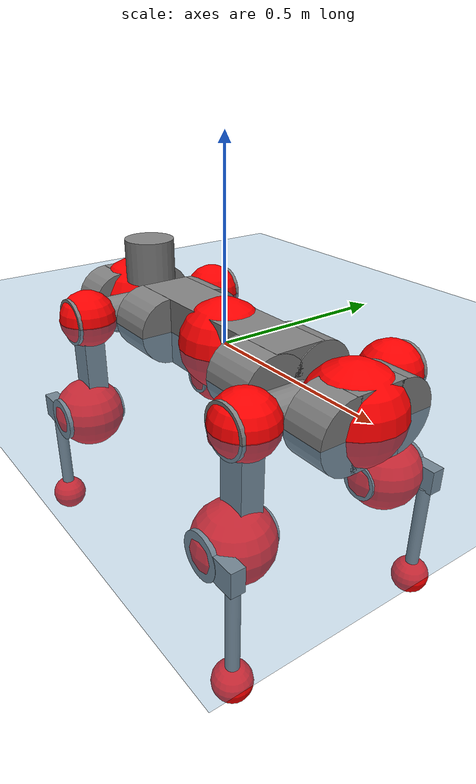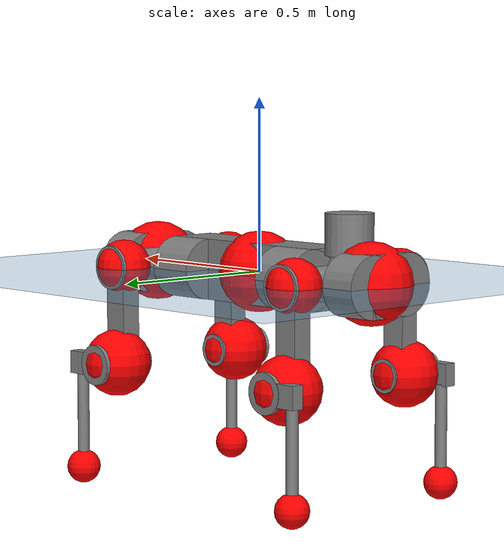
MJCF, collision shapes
<mujoco model="anymal_c">
  <compiler angle="radian" assetdir="assets" balanceinertia="true" inertiafromgeom="false"/>

  <option timestep="0.005" density="1.2" viscosity="2e-05"/>

  <size nkey="1"/>

  <visual>
    <quality shadowsize="8192"/>
    <map shadowclip="0.5"/>
  </visual>

  <default>
    <default class="/">
      <material specular="0" shininess="0.25"/>
      <geom contype="0" conaffinity="0" group="1" solref="-1000 -80"/>
      <site size="0.01 0.005 0.005" group="5"/>
      <general forcelimited="true" forcerange="-80 80" biastype="affine" gainprm="80" biasprm="0 -80 -2"/>
      <default class="anymal_c">
        <joint armature="0.01" damping="0.01" frictionloss="0.1"/>
        <default class="visual">
          <geom type="mesh" group="2"/>
          <default class="visual_zflip"/>
        </default>
        <default class="collision">
          <geom type="cylinder" group="3"/>
          <default class="foot">
            <geom size="0.03 0 0" type="sphere" condim="6" priority="1" friction="0.8 0.02 0.01" solimp="0.015 1 0.03"/>
          </default>
        </default>
      </default>
      <default class="reward_collision_sphere">
        <geom group="5" rgba="1 0 0 1"/>
      </default>
    </default>
  </default>

  <asset>
    <texture type="skybox" colorspace="auto" name="//unnamed_texture_0" builtin="gradient" rgb1="0.95 0.95 0.95" rgb2="0.95 0.95 0.95" width="100" height="600"/>
    <texture type="2d" colorspace="auto" name="texplane" builtin="checker" rgb1="0.345 0.575 0.748" rgb2="0.345 0.575 0.748" markrgb="1 1 1" width="512" height="512"/>
    <texture type="2d" colorspace="linear" name="base" file="base.png"/>
    <texture type="2d" colorspace="linear" name="top_shell" file="top_shell.png"/>
    <texture type="2d" colorspace="linear" name="bottom_shell" file="bottom_shell.png"/>
    <texture type="2d" colorspace="linear" name="remote" file="remote.png"/>
    <texture type="2d" colorspace="linear" name="hatch" file="hatch.png"/>
    <texture type="2d" colorspace="linear" name="handle" file="handle.png"/>
    <texture type="2d" colorspace="linear" name="face" file="face.png"/>
    <texture type="2d" colorspace="linear" name="battery" file="battery.png"/>
    <texture type="2d" colorspace="linear" name="lidar_cage" file="lidar_cage.png"/>
    <texture type="2d" colorspace="linear" name="depth_camera" file="depth_camera.png"/>
    <texture type="2d" colorspace="linear" name="wide_angle_camera" file="wide_angle_camera.png"/>
    <texture type="2d" colorspace="linear" name="lidar" file="lidar.png"/>
    <texture type="2d" colorspace="linear" name="drive" file="drive.png"/>
    <texture type="2d" colorspace="linear" name="hip_l" file="hip_l.png"/>
    <texture type="2d" colorspace="linear" name="shank_l" file="shank_l.png"/>
    <texture type="2d" colorspace="linear" name="foot" file="foot.png"/>
    <texture type="2d" colorspace="linear" name="thigh" file="thigh.png"/>
    <texture type="2d" colorspace="linear" name="shank_r" file="shank_r.png"/>
    <texture type="2d" colorspace="linear" name="hip_r" file="hip_r.png"/>
    <material name="MatPlane" class="/" texture="texplane" texuniform="true" texrepeat="2 2" specular="0.9" shininess="0.5"/>
    <material name="black_plastic" class="/" rgba="0.007 0.007 0.007 1"/>
    <material name="green" class="/" rgba="0.052 0.178 0.033 1"/>
    <material name="red" class="/" rgba="0.178 0.006 0.005 1"/>
    <material name="yellow" class="/" rgba="0.178 0.119 0.006 1"/>
    <material name="lwl" class="/" rgba="0.8 0.8 0.8 1"/>
    <material name="base" class="/" texture="base"/>
    <material name="top_shell" class="/" texture="top_shell"/>
    <material name="bottom_shell" class="/" texture="bottom_shell"/>
    <material name="hip_l" class="/" texture="hip_l"/>
    <material name="thigh" class="/" texture="thigh"/>
    <material name="shank_l" class="/" texture="shank_l"/>
    <material name="foot" class="/" texture="foot"/>
    <material name="hip_r" class="/" texture="hip_r"/>
    <material name="shank" class="/" texture="shank_r"/>
    <material name="hatch" class="/" texture="hatch"/>
    <material name="remote" class="/" texture="remote"/>
    <material name="handle" class="/" texture="handle"/>
    <material name="face" class="/" texture="face"/>
    <material name="depth_camera" class="/" texture="depth_camera"/>
    <material name="wide_angle_camera" class="/" texture="wide_angle_camera"/>
    <material name="battery" class="/" texture="battery"/>
    <material name="lidar_cage" class="/" texture="lidar_cage"/>
    <material name="lidar" class="/" texture="lidar"/>
    <material name="drive" class="/" texture="drive"/>
    <mesh name="base_0" class="/" file="base_0.obj"/>
    <mesh name="base_1" class="/" file="base_1.obj"/>
    <mesh name="base_2" class="/" file="base_2.obj"/>
    <mesh name="base_3" class="/" file="base_3.obj"/>
    <mesh name="base_4" class="/" file="base_4.obj"/>
    <mesh name="base_5" class="/" file="base_5.obj"/>
    <mesh name="top_shell" class="/" file="top_shell.obj"/>
    <mesh name="bottom_shell" class="/" file="bottom_shell.obj"/>
    <mesh name="remote" class="/" file="remote.obj"/>
    <mesh name="handle" class="/" file="handle.obj"/>
    <mesh name="face" class="/" file="face.obj"/>
    <mesh name="wide_angle_camera" class="/" file="wide_angle_camera.obj"/>
    <mesh name="depth_camera" class="/" file="depth_camera.obj"/>
    <mesh name="battery" class="/" file="battery.obj"/>
    <mesh name="lidar_cage" class="/" file="lidar_cage.obj"/>
    <mesh name="lidar" class="/" file="lidar.obj"/>
    <mesh name="drive" class="/" file="drive.obj"/>
    <mesh name="hip_l" class="/" file="hip_l.obj"/>
    <mesh name="thigh" class="/" file="thigh.obj"/>
    <mesh name="shank_l" class="/" file="shank_l.obj"/>
    <mesh name="foot" class="/" file="foot.obj"/>
    <mesh name="hip_r" class="/" file="hip_r.obj"/>
    <mesh name="hatch" class="/" file="hatch.obj"/>
    <mesh name="shank_r" class="/" file="shank_r.obj"/>
  </asset>

  <worldbody>
    <geom name="floor" class="/" size="100 100 0.125" type="plane" group="0" material="MatPlane"/>
    <light name="toplight_shadow" class="/" pos="0 0 5" dir="0.0990148 0.0990148 -0.990148" type="directional" ambient="0.04 0.04 0.04" diffuse="0.55 0.55 0.55" specular="0.12 0.12 0.12"/>
    <light name="toplight_fill" class="/" pos="0 0 5" dir="0.0990148 0.0990148 -0.990148" type="directional" castshadow="false" ambient="0.04 0.04 0.04" diffuse="0.3 0.3 0.3" specular="0.08 0.08 0.08"/>
    <body name="trunk" childclass="anymal_c" pos="-0.000460229 6.21001e-05 8.54855e-05" quat="1 -0.000168247 0.000114687 -1.7932e-05">
      <inertial pos="0.00148232 0.000159448 0.0493351" quat="0.501521 0.500719 0.498356 0.499398" mass="18.0339" diaginertia="0.61968 0.502079 0.205678"/>
      <joint name="//unnamed_joint_0" type="free" armature="0" damping="0" frictionloss="0"/>
      <geom name="//unnamed_geom_1" class="visual" material="green" mesh="base_0"/>
      <geom name="//unnamed_geom_2" class="visual" material="yellow" mesh="base_1"/>
      <geom name="//unnamed_geom_3" class="visual" material="red" mesh="base_2"/>
      <geom name="//unnamed_geom_4" class="visual" material="black_plastic" mesh="base_3"/>
      <geom name="//unnamed_geom_5" class="visual" material="lwl" mesh="base_4"/>
      <geom name="//unnamed_geom_6" class="visual" material="base" mesh="base_5"/>
      <geom name="trunk_1" class="collision" size="0.284275 0.068618 0.0882231" type="box"/>
      <geom name="trunk_2" class="collision" size="0.0882231 0.0710686" pos="0.216212 0.067082 0" quat="0.707107 0 0.707107 0"/>
      <geom name="trunk_3" class="collision" size="0.0882231 0.0710686" pos="-0.216212 0.067082 0" quat="0.707107 0 0.707107 0"/>
      <geom name="trunk_4" class="collision" size="0.0882231 0.0710686" pos="0.216212 -0.067082 0" quat="0.707107 0 0.707107 0"/>
      <geom name="trunk_5" class="collision" size="0.0882231 0.0710686" pos="-0.216212 -0.067082 0" quat="0.707107 0 0.707107 0"/>
      <geom name="//unnamed_geom_12" class="visual" material="top_shell" mesh="top_shell"/>
      <geom name="//unnamed_geom_13" class="visual" material="bottom_shell" mesh="bottom_shell"/>
      <geom name="//unnamed_geom_14" class="visual" material="remote" mesh="remote"/>
      <geom name="//unnamed_geom_15" class="visual" material="handle" mesh="handle"/>
      <geom name="//unnamed_geom_16" class="visual" pos="0.412045 0 0" quat="1 0 0 0" material="face" mesh="face"/>
      <geom name="trunk_6" class="collision" size="0.0539141 0.068618 0.0882231" pos="0.466719 0 0" type="box"/>
      <geom name="//unnamed_geom_18" class="collision" size="0.0882231 0.0539141" pos="0.466719 0.067082 0" quat="0.707107 0 0.707107 0"/>
      <geom name="//unnamed_geom_19" class="collision" size="0.0882231 0.0539141" pos="0.466719 -0.067082 0" quat="0.707107 0 0.707107 0"/>
      <geom name="//unnamed_geom_20" class="visual" pos="0.458915 0 -0.0288174" quat="0.965926 0 0.258819 0" material="depth_camera" mesh="depth_camera"/>
      <geom name="//unnamed_geom_21" class="visual" pos="0.509961 0 0.0147961" material="wide_angle_camera" mesh="wide_angle_camera"/>
      <geom name="//unnamed_geom_22" class="visual_zflip" pos="-0.412045 0 0" quat="0 0 0 1" material="face" mesh="face"/>
      <geom name="trunk_7" class="collision" size="0.0539141 0.068618 0.0882231" pos="-0.466719 0 0" quat="0 0 0 1" type="box"/>
      <geom name="//unnamed_geom_24" class="collision" size="0.0882231 0.0539141" pos="-0.466719 -0.067082 0" quat="0 -0.707107 0 0.707107"/>
      <geom name="//unnamed_geom_25" class="collision" size="0.0882231 0.0539141" pos="-0.466719 0.067082 0" quat="0 -0.707107 0 0.707107"/>
      <geom name="//unnamed_geom_26" class="visual" pos="-0.458915 0 -0.0288174" quat="0 -0.258819 0 0.965926" material="depth_camera" mesh="depth_camera"/>
      <geom name="//unnamed_geom_27" class="visual_zflip" pos="-0.509961 0 0.0147961" quat="0 0 0 1" material="wide_angle_camera" mesh="wide_angle_camera"/>
      <geom name="//unnamed_geom_28" class="visual" material="battery" mesh="battery"/>
      <geom name="//unnamed_geom_29" class="visual" pos="0 0.0728032 0.0287558" quat="0.683013 -0.183013 0.183013 0.683013" material="depth_camera" mesh="depth_camera"/>
      <geom name="//unnamed_geom_30" class="visual" pos="0 -0.0728032 0.0287558" quat="0.683013 0.183013 0.183013 -0.683013" material="depth_camera" mesh="depth_camera"/>
      <geom name="//unnamed_geom_31" class="visual" pos="-0.361844 0 0.072646" quat="1 0 0 0" material="lidar_cage" mesh="lidar_cage"/>
      <geom name="trunk_8" class="collision" size="0.068618 0.0588154" pos="-0.361844 0 0.131949"/>
      <geom name="//unnamed_geom_33" class="visual" pos="-0.361844 -1.40499e-05 0.140548" quat="0.707107 0 0 -0.707107" material="lidar" mesh="lidar"/>
      <geom name="//unnamed_geom_34" class="visual" pos="0.298123 0.0996753 -5.1866e-10" quat="0.258819 0.965926 0 0" material="drive" mesh="drive"/>
      <geom name="//unnamed_geom_35" class="visual" pos="0.298123 -0.0996753 5.1866e-10" quat="0.258819 -0.965926 0 0" material="drive" mesh="drive"/>
      <geom name="//unnamed_geom_36" class="visual" pos="-0.298123 0.0996753 5.1866e-10" quat="0 0 0.965926 -0.258819" material="drive" mesh="drive"/>
      <geom name="//unnamed_geom_37" class="visual" pos="-0.298123 -0.0996753 -5.1866e-10" quat="0 0 -0.965926 -0.258819" material="drive" mesh="drive"/>
      <geom name="//unnamed_geom_38" class="visual" pos="0.115313 0 0.0721518" quat="1 0 0 0" material="hatch" mesh="hatch"/>
      <geom name="//unnamed_geom_39" class="reward_collision_sphere" size="0.117631"/>
      <geom name="//unnamed_geom_40" class="reward_collision_sphere" size="0.117631" pos="0.447334 0 0"/>
      <geom name="//unnamed_geom_41" class="reward_collision_sphere" size="0.117631" pos="-0.447334 0 0"/>
      <site name="imu" pos="0.247584 0.0076847 0.0455843" size="0.00980257"/>
      <camera name="track" pos="0 -1.91663 0" quat="0.707107 0.707107 0 0" mode="trackcom"/>
      <camera name="ego_camera" pos="0.447334 0 -0.0395352" quat="-0.5 -0.5 0.5 0.5"/>
      <body name="LF_HIP" pos="0.299329 0.100815 0.000628278" quat="0.258784 0.965935 -1.80399e-05 -2.68472e-05">
        <inertial pos="0.056397 -0.0135874 -0.00778347" quat="-0.128035 0.70986 -0.135445 0.679236" mass="2.57304" diaginertia="0.00564339 0.00396702 0.00307856"/>
        <joint name="LF_HAA" pos="0 0 0" axis="1 -0.000371567 0.000133116" range="-0.719805 0.484388" armature="0.00977126" damping="0.00614774" frictionloss="0.102328"/>
        <geom name="//unnamed_geom_42" class="visual" pos="0 -3.05104e-05 5.01131e-06" quat="0.258819 -0.965926 0 0" material="hip_l" mesh="hip_l"/>
        <geom name="//unnamed_geom_43" class="visual" pos="0.0595452 -0.0716914 -0.0416135" quat="0.183013 -0.683013 0.683013 0.183013" material="drive" mesh="drive"/>
        <geom name="//unnamed_geom_44" class="collision" size="0.0490129 0.068618" pos="0.0595452 -0.0114612 -0.00682477" quat="-0.353553 -0.612372 0.612372 -0.353553"/>
        <body name="LF_THIGH" pos="0.060596 -0.0698809 -0.0420889" quat="0.182937 -0.683038 0.683005 0.183026">
          <inertial pos="0.0306415 0.000147204 -0.243524" quat="0.992879 -0.00572333 -0.0841397 0.0841345" mass="2.93335" diaginertia="0.0294803 0.0240897 0.00397629"/>
          <joint name="LF_HFE" pos="0 0 0" axis="0.999999 -0.000834328 -0.000991128" stiffness="0.00356818" range="-3.15116 3.12062" armature="0.00956536" damping="0.00516742" frictionloss="0.10196"/>
          <geom name="//unnamed_geom_45" class="visual" pos="0.000711522 1.12119e-06 0" quat="0.707107 0 0 -0.707107" material="thigh" mesh="thigh"/>
          <geom name="//unnamed_geom_46" class="collision" size="0.0637167 0.0392103" pos="0.039763 0 0" quat="0.5 0.5 -0.5 -0.5"/>
          <geom name="//unnamed_geom_47" class="collision" size="0.0367596 0.0294077 0.138524" pos="0.0298223 0 -0.139672" quat="0.707107 0 0 -0.707107" type="box"/>
          <geom name="//unnamed_geom_48" class="visual" pos="0.0997058 0 -0.281689" quat="1 0 0 0" material="drive" mesh="drive"/>
          <geom name="//unnamed_geom_49" class="collision" size="0.0490129 0.068618" pos="0.0301205 0 -0.281689" quat="0.707107 0 0.707107 0"/>
          <geom name="//unnamed_geom_50" class="reward_collision_sphere" size="0.0784206" pos="0.0248519 0 0"/>
          <body name="LF_SHANK" pos="0.100287 -0.000696392 -0.281852" quat="1 0.000113419 0.000220277 -8.33571e-05">
            <inertial pos="0.00552453 -0.0581858 -0.0792673" quat="0.992945 -0.115602 -0.00148737 -0.0263326" mass="0.551066" diaginertia="0.00988773 0.00741241 0.00105735"/>
            <joint name="LF_KFE" pos="0 0 0" axis="1 -0.00019074 -0.00020706" range="-3.15801 3.14032" armature="0.00989515" damping="0.00815558" frictionloss="0.098861"/>
            <geom name="//unnamed_geom_51" class="visual" pos="0.000232012 0.0012371 0" quat="0.707107 0 0 -0.707107" material="shank_l" mesh="shank_l"/>
            <geom name="LF_kfe_act" class="collision" size="0.0588154 0.0196051" pos="0.0198815 0 0" quat="0.5 0.5 -0.5 -0.5"/>
            <geom name="//unnamed_geom_53" class="collision" size="0.0563638 0.0330837 0.0186249" pos="0.0198815 -0.0551021 0" quat="0.5 0.5 -0.5 -0.5" type="box"/>
            <geom name="//unnamed_geom_54" class="visual" pos="0.0129726 -0.0838851 -0.334043" quat="0.382683 0 0 -0.92388" material="foot" mesh="foot"/>
            <geom name="LF_calf" class="collision" size="0.0171545 0.138463" pos="0.0129727 -0.0842837 -0.167022" quat="0.707107 0 0 -0.707107"/>
            <geom name="LF_foot" class="foot" size="0.0303472" pos="0.0129727 -0.0842837 -0.311805" quat="0.707107 0 0 -0.707107"/>
            <geom name="//unnamed_geom_57" class="reward_collision_sphere" size="0.0980257" pos="-0.0497038 0 0"/>
            <geom name="//unnamed_geom_58" class="reward_collision_sphere" size="0.0490129" pos="0.0129727 -0.0842837 -0.311805"/>
            <site name="LF_foot" class="foot" pos="0.0129727 -0.0842837 -0.311805" quat="0.707107 0 0 -0.707107" size="0.00980257"/>
          </body>
        </body>
      </body>
      <body name="RF_HIP" pos="0.298632 -0.100167 -5.4037e-05" quat="0.258809 -0.965929 5.07048e-06 -9.86482e-06">
        <inertial pos="0.0573213 0.0143321 -0.00738986" quat="0.134167 0.679671 0.12983 0.709359" mass="2.63783" diaginertia="0.00575286 0.00398951 0.00314396"/>
        <joint name="RF_HAA" pos="0 0 0" axis="0.999988 0.0014304 0.00473276" range="-0.489276 0.720385" armature="0.00979902" damping="0.0122716" frictionloss="0.0979163"/>
        <geom name="//unnamed_geom_59" class="visual" pos="0 3.05102e-05 5.0113e-06" quat="0.258819 0.965926 0 0" material="hip_r" mesh="hip_r"/>
        <geom name="//unnamed_geom_60" class="visual" pos="0.0595452 0.0716914 -0.0416135" quat="0.183013 0.683013 0.683013 -0.183013" material="drive" mesh="drive"/>
        <geom name="//unnamed_geom_61" class="collision" size="0.0490129 0.068618" pos="0.0595452 0.0114612 -0.00682477" quat="-0.353553 0.612372 0.612372 0.353553"/>
        <body name="RF_THIGH" pos="0.0591302 0.0698749 -0.041601" quat="0.182764 0.682878 0.683209 -0.183033">
          <inertial pos="0.0308422 -0.000323953 -0.24187" quat="0.992972 -0.0078339 -0.0775131 0.0890877" mass="2.85311" diaginertia="0.0295379 0.0241938 0.00393066"/>
          <joint name="RF_HFE" pos="0 0 0" axis="1 5.76006e-05 -4.9153e-05" stiffness="0.00828707" range="-3.13966 3.13215" armature="0.010212" damping="0.00980016" frictionloss="0.0966696"/>
          <geom name="//unnamed_geom_62" class="visual" pos="0.000711522 1.12119e-06 0" quat="0.707107 0 0 -0.707107" material="thigh" mesh="thigh"/>
          <geom name="//unnamed_geom_63" class="collision" size="0.0637167 0.0392103" pos="0.039763 0 0" quat="0.5 0.5 0.5 0.5"/>
          <geom name="//unnamed_geom_64" class="collision" size="0.0367596 0.0294077 0.138524" pos="0.0298223 0 -0.139672" quat="0.707107 0 0 0.707107" type="box"/>
          <geom name="//unnamed_geom_65" class="visual" pos="0.0997058 0 -0.281689" quat="1 0 0 0" material="drive" mesh="drive"/>
          <geom name="//unnamed_geom_66" class="collision" size="0.0490129 0.068618" pos="0.0301205 0 -0.281689" quat="0.707107 0 0.707107 0"/>
          <geom name="//unnamed_geom_67" class="reward_collision_sphere" size="0.0784206" pos="0.0248519 0 0"/>
          <body name="RF_SHANK" pos="0.100375 -2.02573e-05 -0.282002" quat="1 -0.00029335 -6.49872e-05 -0.000174794">
            <inertial pos="0.00639679 0.058699 -0.0795793" quat="0.993046 0.114628 -0.00184208 0.0267526" mass="0.543767" diaginertia="0.00975124 0.00744382 0.00104466"/>
            <joint name="RF_KFE" pos="0 0 0" axis="0.999993 0.00332894 -0.00170222" range="-3.13461 3.15392" armature="0.00946936" damping="0.00836918" frictionloss="0.0959197"/>
            <geom name="//unnamed_geom_68" class="visual" pos="0.000232011 -0.0012371 0" quat="0.707107 0 0 0.707107" material="shank" mesh="shank_r"/>
            <geom name="RF_kfe_act" class="collision" size="0.0588154 0.0196051" pos="0.0198815 0 0" quat="0.5 0.5 0.5 0.5"/>
            <geom name="//unnamed_geom_70" class="collision" size="0.0563638 0.0330837 0.0186249" pos="0.0198815 0.0551021 0" quat="0.5 0.5 0.5 0.5" type="box"/>
            <geom name="//unnamed_geom_71" class="visual" pos="0.0129727 0.0838851 -0.334043" quat="0.382683 0 0 0.92388" material="foot" mesh="foot"/>
            <geom name="RF_calf" class="collision" size="0.0171545 0.138463" pos="0.0129727 0.0842837 -0.167022" quat="0.707107 0 0 0.707107"/>
            <geom name="RF_foot" class="foot" size="0.0293802" pos="0.0129727 0.0842837 -0.311805" quat="0.707107 0 0 0.707107"/>
            <geom name="//unnamed_geom_74" class="reward_collision_sphere" size="0.0980257" pos="-0.0497038 0 0"/>
            <geom name="//unnamed_geom_75" class="reward_collision_sphere" size="0.0490129" pos="0.0129727 0.0842837 -0.311805"/>
            <site name="RF_foot" class="foot" pos="0.0129727 0.0842837 -0.311805" quat="0.707107 0 0 0.707107" size="0.00980257"/>
          </body>
        </body>
      </body>
      <body name="LH_HIP" pos="-0.297691 0.100682 0.000502042" quat="0.000162219 -0.00014806 0.965937 -0.258777">
        <inertial pos="0.0564622 0.0135776 -0.00855995" quat="0.135075 0.68009 0.130697 0.708625" mass="2.62494" diaginertia="0.00576108 0.00396168 0.00313911"/>
        <joint name="LH_HAA" pos="0 0 0" axis="0.999999 -0.00039471 -0.00112697" stiffness="0.000569926" range="-0.497704 0.721728" armature="0.00986729" damping="0.00680154" frictionloss="0.0980955"/>
        <geom name="//unnamed_geom_76" class="visual" pos="0 3.05102e-05 5.0113e-06" quat="-0.258819 -0.965926 0 0" material="hip_r" mesh="hip_r"/>
        <geom name="//unnamed_geom_77" class="visual" pos="0.0595452 0.0716914 -0.0416135" quat="0.183013 0.683013 0.683013 -0.183013" material="drive" mesh="drive"/>
        <geom name="//unnamed_geom_78" class="collision" size="0.0490129 0.068618" pos="0.0595452 0.0114612 -0.00682477" quat="-0.353553 0.612372 0.612372 0.353553"/>
        <body name="LH_THIGH" pos="0.058879 0.0700111 -0.0418717" quat="0.183056 0.683003 0.682999 -0.183057">
          <inertial pos="0.0299707 0.000118853 -0.242903" quat="0.992765 -0.00480394 -0.0807047 0.0887814" mass="2.9306" diaginertia="0.0294655 0.0241519 0.00398665"/>
          <joint name="LH_HFE" pos="0 0 0" axis="0.999999 0.00108993 0.000202794" range="-3.12817 3.15729" armature="0.0100101" damping="0.0125014" frictionloss="0.097675"/>
          <geom name="//unnamed_geom_79" class="visual" pos="0.000711522 1.12119e-06 0" quat="0.707107 0 0 -0.707107" material="thigh" mesh="thigh"/>
          <geom name="//unnamed_geom_80" class="collision" size="0.0637167 0.0392103" pos="0.039763 0 0" quat="0.5 0.5 -0.5 -0.5"/>
          <geom name="//unnamed_geom_81" class="collision" size="0.0367596 0.0294077 0.138524" pos="0.0298223 0 -0.139672" quat="0.707107 0 0 -0.707107" type="box"/>
          <geom name="//unnamed_geom_82" class="visual" pos="0.0997058 0 -0.281689" quat="1 0 0 0" material="drive" mesh="drive"/>
          <geom name="//unnamed_geom_83" class="collision" size="0.0490129 0.068618" pos="0.0301205 0 -0.281689" quat="0.707107 0 0.707107 0"/>
          <geom name="//unnamed_geom_84" class="reward_collision_sphere" size="0.0784206" pos="0.0248519 0 0"/>
          <body name="LH_SHANK" pos="0.0998082 -0.000389719 -0.281794" quat="1 -3.28416e-05 5.03902e-05 -3.32471e-05">
            <inertial pos="0.00479579 0.0583068 -0.0798796" quat="0.9929 0.117009 -0.00194648 0.0213032" mass="0.559938" diaginertia="0.010074 0.00750748 0.00107017"/>
            <joint name="LH_KFE" pos="0 0 0" axis="0.999998 0.000542311 -0.00173532" stiffness="0.000787375" range="-3.15343 3.15787" armature="0.00984276" damping="0.00710889" frictionloss="0.100676"/>
            <geom name="//unnamed_geom_85" class="visual" pos="0.000232011 -0.0012371 0" quat="-0.707107 0 0 -0.707107" material="shank" mesh="shank_r"/>
            <geom name="LH_kfe_act" class="collision" size="0.0588154 0.0196051" pos="0.0198815 0 0" quat="0.5 0.5 -0.5 -0.5"/>
            <geom name="//unnamed_geom_87" class="collision" size="0.0563638 0.0330837 0.0186249" pos="0.0198815 0.0551021 0" quat="0.5 0.5 -0.5 -0.5" type="box"/>
            <geom name="//unnamed_geom_88" class="visual" pos="0.0129727 0.0838851 -0.334043" quat="-0.382683 0 0 -0.92388" material="foot" mesh="foot"/>
            <geom name="LH_calf" class="collision" size="0.0171545 0.138463" pos="0.0129727 0.0842837 -0.167022" quat="0.707107 0 0 -0.707107"/>
            <geom name="LH_foot" class="foot" size="0.0297909" pos="0.0129727 0.0842837 -0.311805" quat="0.707107 0 0 -0.707107"/>
            <geom name="//unnamed_geom_91" class="reward_collision_sphere" size="0.0980257" pos="-0.0497038 0 0"/>
            <geom name="//unnamed_geom_92" class="reward_collision_sphere" size="0.0490129" pos="0.0129727 0.0842837 -0.311805"/>
            <site name="LH_foot" class="foot" pos="0.0129727 0.0842837 -0.311805" quat="0.707107 0 0 -0.707107" size="0.00980257"/>
          </body>
        </body>
      </body>
      <body name="RH_HIP" pos="-0.297354 -0.0994911 -0.000422707" quat="2.92282e-05 1.44028e-05 -0.965922 -0.258833">
        <inertial pos="0.0571755 -0.0154461 -0.008743" quat="-0.127231 0.711397 -0.131379 0.678577" mass="2.58091" diaginertia="0.00564803 0.0039517 0.00307713"/>
        <joint name="RH_HAA" pos="0 0 0" axis="0.999999 0.000496544 -0.0012068" stiffness="0.00019729" range="-0.720722 0.47722" armature="0.00993855" damping="0.0143564" frictionloss="0.0979153"/>
        <geom name="//unnamed_geom_93" class="visual" pos="0 -3.05104e-05 5.01131e-06" quat="-0.258819 0.965926 0 0" material="hip_l" mesh="hip_l"/>
        <geom name="//unnamed_geom_94" class="visual" pos="0.0595452 -0.0716914 -0.0416135" quat="-0.183013 0.683013 -0.683013 -0.183013" material="drive" mesh="drive"/>
        <geom name="//unnamed_geom_95" class="collision" size="0.0490129 0.068618" pos="0.0595452 -0.0114612 -0.00682477" quat="0.353553 0.612372 -0.612372 0.353553"/>
        <body name="RH_THIGH" pos="0.0597974 -0.0700814 -0.0419347" quat="-0.182729 0.683118 -0.682998 -0.182959">
          <inertial pos="0.0307586 -0.000813938 -0.242178" quat="0.993121 -0.00540322 -0.0808251 0.0845474" mass="2.95208" diaginertia="0.0299664 0.0245159 0.00399016"/>
          <joint name="RH_HFE" pos="0 0 0" axis="0.999998 -0.00110222 0.00192003" range="-3.1569 3.13545" armature="0.00963583" damping="0.00441386" frictionloss="0.0987947"/>
          <geom name="//unnamed_geom_96" class="visual" pos="0.000711522 1.12119e-06 0" quat="0.707107 0 0 -0.707107" material="thigh" mesh="thigh"/>
          <geom name="//unnamed_geom_97" class="collision" size="0.0637167 0.0392103" pos="0.039763 0 0" quat="0.5 0.5 0.5 0.5"/>
          <geom name="//unnamed_geom_98" class="collision" size="0.0367596 0.0294077 0.138524" pos="0.0298223 0 -0.139672" quat="0.707107 0 0 0.707107" type="box"/>
          <geom name="//unnamed_geom_99" class="visual" pos="0.0997058 0 -0.281689" quat="1 0 0 0" material="drive" mesh="drive"/>
          <geom name="//unnamed_geom_100" class="collision" size="0.0490129 0.068618" pos="0.0301205 0 -0.281689" quat="0.707107 0 0.707107 0"/>
          <geom name="//unnamed_geom_101" class="reward_collision_sphere" size="0.0784206" pos="0.0248519 0 0"/>
          <body name="RH_SHANK" pos="0.0995736 4.81176e-05 -0.28195" quat="1 2.78069e-05 4.06947e-05 1.85127e-05">
            <inertial pos="0.00494604 -0.0582619 -0.0793408" quat="0.992526 -0.119237 -0.00248607 -0.0258498" mass="0.552589" diaginertia="0.00991424 0.00746198 0.00106448"/>
            <joint name="RH_KFE" pos="0 0 0" axis="0.999989 -0.00420676 0.00186485" range="-3.13166 3.13241" armature="0.00979554" damping="0.00849187" frictionloss="0.0960855"/>
            <geom name="//unnamed_geom_102" class="visual" pos="0.000232012 0.0012371 0" quat="0.707107 0 0 -0.707107" material="shank_l" mesh="shank_l"/>
            <geom name="RH_kfe_act" class="collision" size="0.0588154 0.0196051" pos="0.0198815 0 0" quat="0.5 0.5 0.5 0.5"/>
            <geom name="//unnamed_geom_104" class="collision" size="0.0563638 0.0330837 0.0186249" pos="0.0198815 -0.0551021 0" quat="0.5 0.5 0.5 0.5" type="box"/>
            <geom name="//unnamed_geom_105" class="visual" pos="0.0129726 -0.0838851 -0.334043" quat="0.382683 0 0 -0.92388" material="foot" mesh="foot"/>
            <geom name="RH_calf" class="collision" size="0.0171545 0.138463" pos="0.0129727 -0.0842837 -0.167022" quat="0.707107 0 0 0.707107"/>
            <geom name="RH_foot" class="foot" size="0.0288111" pos="0.0129727 -0.0842837 -0.311805" quat="0.707107 0 0 0.707107"/>
            <geom name="//unnamed_geom_108" class="reward_collision_sphere" size="0.0980257" pos="-0.0497038 0 0"/>
            <geom name="//unnamed_geom_109" class="reward_collision_sphere" size="0.0490129" pos="0.0129727 -0.0842837 -0.311805"/>
            <site name="RH_foot" class="foot" pos="0.0129727 -0.0842837 -0.311805" quat="0.707107 0 0 0.707107" size="0.00980257"/>
          </body>
        </body>
      </body>
    </body>
  </worldbody>

  <contact>
    <pair class="/" geom1="floor" geom2="LF_foot" name="//unnamed_contact_0"/>
    <pair class="/" geom1="floor" geom2="RF_foot" name="//unnamed_contact_1"/>
    <pair class="/" geom1="floor" geom2="LH_foot" name="//unnamed_contact_2"/>
    <pair class="/" geom1="floor" geom2="RH_foot" name="//unnamed_contact_3"/>
  </contact>

  <actuator>
    <general name="LF_HAA" class="/" joint="LF_HAA" forcerange="-81.3902 81.3902" gainprm="80.7316" biasprm="0 -80.7316 -1.94149"/>
    <general name="LF_HFE" class="/" joint="LF_HFE" forcerange="-78.0314 78.0314" gainprm="80.7316" biasprm="0 -80.7316 -1.94149"/>
    <general name="LF_KFE" class="/" joint="LF_KFE" forcerange="-77.8372 77.8372" gainprm="80.7316" biasprm="0 -80.7316 -1.94149"/>
    <general name="RF_HAA" class="/" joint="RF_HAA" forcerange="-78.4499 78.4499" gainprm="80.7316" biasprm="0 -80.7316 -1.94149"/>
    <general name="RF_HFE" class="/" joint="RF_HFE" forcerange="-77.5177 77.5177" gainprm="80.7316" biasprm="0 -80.7316 -1.94149"/>
    <general name="RF_KFE" class="/" joint="RF_KFE" forcerange="-77.4131 77.4131" gainprm="80.7316" biasprm="0 -80.7316 -1.94149"/>
    <general name="LH_HAA" class="/" joint="LH_HAA" forcerange="-78.6724 78.6724" gainprm="80.7316" biasprm="0 -80.7316 -1.94149"/>
    <general name="LH_HFE" class="/" joint="LH_HFE" forcerange="-81.3735 81.3735" gainprm="80.7316" biasprm="0 -80.7316 -1.94149"/>
    <general name="LH_KFE" class="/" joint="LH_KFE" forcerange="-78.2649 78.2649" gainprm="80.7316" biasprm="0 -80.7316 -1.94149"/>
    <general name="RH_HAA" class="/" joint="RH_HAA" forcerange="-79.54 79.54" gainprm="80.7316" biasprm="0 -80.7316 -1.94149"/>
    <general name="RH_HFE" class="/" joint="RH_HFE" forcerange="-77.8529 77.8529" gainprm="80.7316" biasprm="0 -80.7316 -1.94149"/>
    <general name="RH_KFE" class="/" joint="RH_KFE" forcerange="-80.0988 80.0988" gainprm="80.7316" biasprm="0 -80.7316 -1.94149"/>
  </actuator>

  <sensor>
    <gyro site="imu" name="imu_angular_velocity"/>
    <velocimeter site="imu" name="imu_linear_velocity"/>
    <framelinvel objtype="site" objname="LF_foot" name="LF_foot_global_linear_velocity"/>
    <framelinvel objtype="site" objname="RF_foot" name="RF_foot_global_linear_velocity"/>
    <framelinvel objtype="site" objname="LH_foot" name="LH_foot_global_linear_velocity"/>
    <framelinvel objtype="site" objname="RH_foot" name="RH_foot_global_linear_velocity"/>
  </sensor>

  <keyframe>
    <key name="home" qpos="0 0 0.55 1 0 0 0 0 0.4 -0.8 0 -0.4 0.8 0 -0.4 0.8 0 0.4 -0.8"/>
  </keyframe>
</mujoco>
